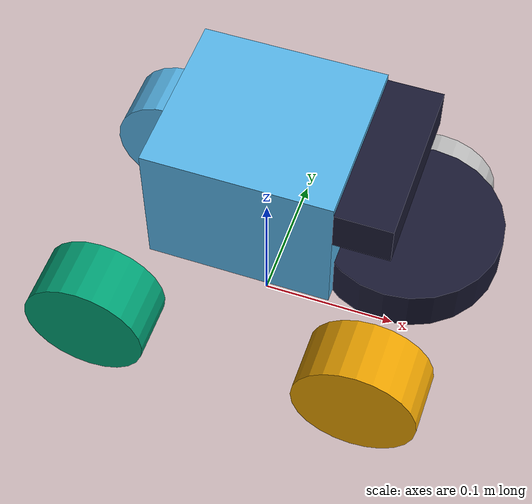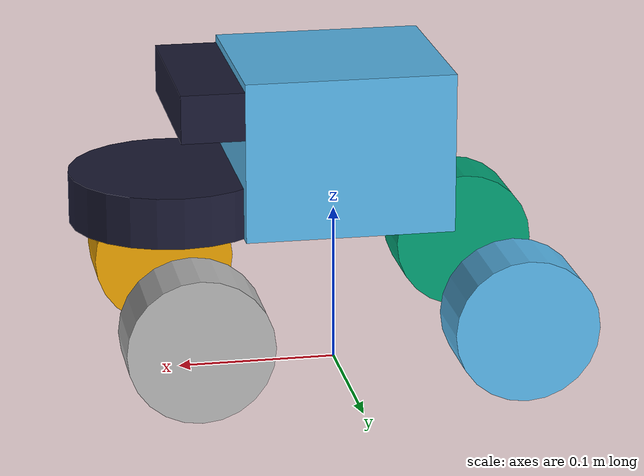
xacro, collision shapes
<?xml version="1.0"?>
<robot name="limo_four_diff" xmlns:xacro="http://ros.org/wiki/xacro">

    <xacro:arg name="robot_namespace" default="/" />

    <!-- 导入解耦后的传感器与执行机构模块 -->
    <xacro:include filename="$(find limo_gazebo_sim)/urdf/sensors.xacro" />
    <xacro:include filename="$(find limo_gazebo_sim)/urdf/actuators.xacro" />

    <!-- ================= 几何与物理参数定义 ================= -->
    <xacro:property name="M_PI" value="3.14159"/>

    <xacro:property name="base_x_size" value="0.13" />
    <xacro:property name="base_y_size" value="0.12" />
    <xacro:property name="base_z_size" value="0.1" />

    <xacro:property name="wheelbase" value="0.2"/>
    <xacro:property name="track" value="0.13"/>
    <xacro:property name="wheel_vertical_offset" value="-0.10" />
    <xacro:property name="base_mass" value="2.1557"/>

    <xacro:property name="wheel_length" value="0.045" />
    <xacro:property name="wheel_radius" value="0.045" />
    <xacro:property name="wheel_scale" value="2 2 2" />

    <!-- ================= 底盘基准与车身 Link ================= -->
    <link name="base_footprint"/>

    <joint name="base_joint" type="fixed">
        <parent link="base_footprint"/>
        <child link="base_link"/>
        <origin xyz="0.0 0.0 0.15" rpy="0 0 0"/>
    </joint>

    <link name="base_link">
        <visual>
            <origin xyz="0 0 -0.15" rpy="0 0 1.57" />
            <geometry>
                <mesh filename="package://limo_gazebo_sim/CAD/limo-model/limo_base.dae" scale="1 1 1"/>
            </geometry>
        </visual>
        <collision>
            <origin xyz="0 0 0" rpy="0 0 0" />
            <geometry>
                <box size="${base_x_size} ${base_y_size} ${base_z_size}"/>
            </geometry>
        </collision>
    </link>

    <link name="inertial_link">
        <inertial>
            <origin xyz="0.0 0.0 0.0" />
            <mass value="${base_mass}" />
            <inertia ixx="0.24" ixy="0" ixz="0"
                     iyy="0.96" iyz="0"
                     izz="0.96" />
        </inertial>
    </link>

    <joint name="inertial_joint" type="fixed">
        <origin xyz="0 0 0" rpy="0 0 0" />
        <parent link="base_link" />
        <child link="inertial_link" />
    </joint>

    <!-- ================= 传感器装配 (包含 Gazebo 插件) ================= -->
    <xacro:limo_laser parent_prefix="base_link" frame_prefix="laser">
        <origin xyz="0.103 0 -0.034" rpy="0 0 0"/>
    </xacro:limo_laser>

    <xacro:limo_depth_camera parent_prefix="base_link" frame_prefix="depth_camera">
        <origin xyz="0.084 0 0.03" rpy="0 0 0"/>
    </xacro:limo_depth_camera>

    <xacro:limo_imu parent_prefix="base_link" frame_prefix="imu">
        <origin xyz="0.0 0 -0.1" rpy="0 0 0"/>
    </xacro:limo_imu>

    <!-- ================= 四轮差速驱动轮系装配 ================= -->
    <!-- 左前轮 -->
    <xacro:limo_wheel parent_prefix="base_link" wheel_prefix="front_left" reflect="1">
        <origin xyz="${wheelbase/2} ${track/2} ${wheel_vertical_offset}" rpy="0 0 0" />
    </xacro:limo_wheel>
    <xacro:limo_wheel_transmission wheel_prefix="front_left" />

    <!-- 右前轮 -->
    <xacro:limo_wheel parent_prefix="base_link" wheel_prefix="front_right" reflect="-1">
        <origin xyz="${wheelbase/2} ${-track/2} ${wheel_vertical_offset}" rpy="${M_PI} 0 0" />
    </xacro:limo_wheel>
    <xacro:limo_wheel_transmission wheel_prefix="front_right" />

    <!-- 左后轮 -->
    <xacro:limo_wheel parent_prefix="base_link" wheel_prefix="rear_left" reflect="1">
        <origin xyz="${-wheelbase/2} ${track/2} ${wheel_vertical_offset}" rpy="0 0 0" />
    </xacro:limo_wheel>
    <xacro:limo_wheel_transmission wheel_prefix="rear_left" />

    <!-- 右后轮 -->
    <xacro:limo_wheel parent_prefix="base_link" wheel_prefix="rear_right" reflect="-1">
        <origin xyz="${-wheelbase/2} ${-track/2} ${wheel_vertical_offset}" rpy="${M_PI} 0 0" />
    </xacro:limo_wheel>
    <xacro:limo_wheel_transmission wheel_prefix="rear_right" />

    <!-- ================= Gazebo 仿真环境动力学与控制插件 ================= -->
    <gazebo reference="front_left_wheel">
        <mu1>10</mu1>
        <mu2>10</mu2>
        <kp>10000000.0</kp>
        <kd>1.0</kd>
        <minDepth>0.01</minDepth>
        <fdir1>1 0 0</fdir1>
        <maxContacts value="64"/>
    </gazebo>
    <gazebo reference="front_right_wheel">
        <mu1>10</mu1>
        <mu2>10</mu2>
        <kp>10000000.0</kp>
        <kd>1.0</kd>
        <minDepth>0.01</minDepth>
        <fdir1>1 0 0</fdir1>
        <maxContacts value="64"/>
    </gazebo>
    <gazebo reference="rear_left_wheel">
        <mu1>10</mu1>
        <mu2>10</mu2>
        <kp>10000000.0</kp>
        <kd>1.0</kd>
        <minDepth>0.01</minDepth>
        <fdir1>1 0 0</fdir1>
        <maxContacts value="64"/>
    </gazebo>
    <gazebo reference="rear_right_wheel">
        <mu1>10</mu1>
        <mu2>10</mu2>
        <kp>10000000.0</kp>
        <kd>1.0</kd>
        <minDepth>0.01</minDepth>
        <fdir1>1 0 0</fdir1>
        <maxContacts value="64"/>
    </gazebo>

    <gazebo>
        <!-- ros_control 控制器插件 -->
        <plugin name="gazebo_ros_control" filename="libgazebo_ros_control.so">
            <robotNamespace>$(arg robot_namespace)</robotNamespace>
        </plugin>

        <!-- 四轮差速滑移驱动插件 -->
        <plugin name="four_diff_controller" filename="libgazebo_ros_skid_steer_drive.so">
            <updateRate>100.0</updateRate>
            <robotNamespace>$(arg robot_namespace)</robotNamespace>
            <leftFrontJoint>front_left_wheel</leftFrontJoint>
            <rightFrontJoint>front_right_wheel</rightFrontJoint>
            <leftRearJoint>rear_left_wheel</leftRearJoint>
            <rightRearJoint>rear_right_wheel</rightRearJoint>
            <wheelSeparation>0.172</wheelSeparation>
            <wheelDiameter>0.09</wheelDiameter>
            <robotBaseFrame>base_footprint</robotBaseFrame>
            <commandTopic>cmd_vel</commandTopic>
            <torque>50</torque>
            <broadcastTF>true</broadcastTF>
            <odometryTopic>odom</odometryTopic>
            <odometryFrame>odom</odometryFrame>
            <covariance_x>0.000100</covariance_x>
            <covariance_y>0.000100</covariance_y>
            <covariance_yaw>0.010000</covariance_yaw>
        </plugin>
    </gazebo>

</robot>

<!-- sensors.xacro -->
<robot xmlns:xacro="http://ros.org/wiki/xacro">

    <!-- 激光雷达组件 (LiDAR): 包含物理外观、碰撞体、固定关节以及 Gazebo 射线传感器插件 -->
    <xacro:macro name="limo_laser" params="parent_prefix frame_prefix *joint_pose">
        <link name="${frame_prefix}_link">
            <pose>0 0 0 0 0 0</pose>
            <inertial>
                <mass value="0.1"/>
                <origin xyz="0.0 0 0" rpy="0 0 0"/>
                <inertia ixx="1e-6" ixy="0" ixz="0"
                         iyy="1e-6" iyz="0"
                         izz="1e-6"/>
            </inertial>
            <visual name="laser_visual">
                <origin xyz="0 0 0" rpy="0 0 0"/>
                <geometry>
                    <cylinder radius="0.04" length="0.02"/>
                </geometry>
                <material name="laser_material">
                    <color rgba="0.1 0.1 0.2 1.0"/>
                </material>
            </visual>
            <collision name="laser_collision">
                <origin xyz="0 0 0" rpy="0 0 0"/>
                <geometry>
                    <cylinder radius="0.064" length="0.032"/>
                </geometry>
            </collision>
        </link>

        <joint name="laser_joint" type="fixed">
            <xacro:insert_block name="joint_pose"/>
            <parent link="${parent_prefix}"/>
            <child link="${frame_prefix}_link"/>
        </joint>

        <gazebo reference="${frame_prefix}_link">
            <material>Gazebo/Yellow</material>
            <sensor type="ray" name="laser_sensor">
                <pose>0 0 0 0 0 0</pose>
                <visualize>false</visualize>
                <update_rate>8</update_rate>
                <ray>
                    <scan>
                        <horizontal>
                            <samples>720</samples>
                            <resolution>1</resolution>
                            <min_angle>-2.09439504</min_angle>
                            <max_angle>2.09439504</max_angle>
                        </horizontal>
                    </scan>
                    <range>
                        <min>0.08</min>
                        <max>8.0</max>
                        <resolution>0.01</resolution>
                    </range>
                    <noise>
                        <type>gaussian</type>
                        <mean>0.0</mean>
                        <stddev>0.01</stddev>
                    </noise>
                </ray>
                <plugin name="gazebo_ros_laser_sensor" filename="libgazebo_ros_laser.so">
                    <topicName>/scan</topicName>
                    <frameName>laser_link</frameName>
                </plugin>
            </sensor>
        </gazebo>
    </xacro:macro>

    <!-- 深度相机组件 (Depth Camera): 包含物理外观、相机光学坐标系以及 OpenNI Kinect 插件 -->
    <xacro:macro name="limo_depth_camera" params="parent_prefix frame_prefix *joint_pose">
        <link name="${frame_prefix}_link">
            <pose>0 0 0 0 0 0</pose>
            <inertial>
                <mass value="0.1"/>
                <origin xyz="0.0 0 0" rpy="0 0 0"/>
                <inertia ixx="1e-6" ixy="0" ixz="0"
                         iyy="1e-6" iyz="0"
                         izz="1e-6"/>
            </inertial>
            <visual name="depth_camera_visual">
                <origin xyz="0 0 0" rpy="0 0 0"/>
                <geometry>
                    <box size="0.04 0.12 0.03"/>
                </geometry>
                <material name="depth_camera_material">
                    <color rgba="0.1 0.1 0.2 1.0"/>
                </material>
            </visual>
            <collision name="depth_camera_collision">
                <origin xyz="0 0 0" rpy="0 0 0"/>
                <geometry>
                    <box size="0.04 0.12 0.03"/>
                </geometry>
            </collision>
        </link>

        <joint name="depth_camera_joint" type="fixed">
            <xacro:insert_block name="joint_pose"/>
            <parent link="${parent_prefix}"/>
            <child link="${frame_prefix}_link"/>
        </joint>

        <!-- 相机光学参考系 (Optical frame) -->
        <link name="depth_link"/>
        <joint name="${frame_prefix}_to_camera_joint" type="fixed">
            <origin xyz="0 0 0" rpy="${-M_PI/2} 0 ${-M_PI/2}"/>
            <parent link="${frame_prefix}_link"/>
            <child link="depth_link"/>
        </joint>

        <gazebo reference="${frame_prefix}_link">
            <material>Gazebo/Yellow</material>
            <sensor name="sensor_camera" type="depth">
                <pose>0.0 0.0 0.0 0.0 0.0 0.0</pose>
                <always_on>true</always_on>
                <visualize>true</visualize>
                <update_rate>10.0</update_rate>
                <camera name="head">
                    <horizontal_fov>1.3962634</horizontal_fov>
                    <image>
                        <width>640</width>
                        <height>480</height>
                        <format>R8G8B8</format>
                    </image>
                    <clip>
                        <near>0.02</near>
                        <far>300</far>
                    </clip>
                </camera>
                <plugin name="gazebo_ros_depth_camera_sensor" filename="libgazebo_ros_openni_kinect.so">
                    <baseline>0.2</baseline>
                    <alwaysOn>true</alwaysOn>
                    <updateRate>0.0</updateRate>
                    <cameraName>camera_ir</cameraName>
                    <imageTopicName>/color/image_raw</imageTopicName>
                    <cameraInfoTopicName>/color/camera_info</cameraInfoTopicName>
                    <depthImageTopicName>/depth/image_raw</depthImageTopicName>
                    <depthImageCameraInfoTopicName>/depth/camera_info</depthImageCameraInfoTopicName>
                    <pointCloudTopicName>/depth/3Dpoints</pointCloudTopicName>
                    <frameName>depth_link</frameName>
                    <cameraname>depth_camera_link</cameraname>
                    <pointCloudCutoff>0.5</pointCloudCutoff>
                    <pointCloudCutoffMax>3.0</pointCloudCutoffMax>
                    <distortionK1>0</distortionK1>
                    <distortionK2>0</distortionK2>
                    <distortionK3>0</distortionK3>
                    <distortionT1>0</distortionT1>
                    <distortionT2>0</distortionT2>
                    <CxPrime>0</CxPrime>
                    <Cx>0</Cx>
                    <Cy>0</Cy>
                    <focalLength>0</focalLength>
                    <hackBaseline>0</hackBaseline>
                </plugin>
            </sensor>
        </gazebo>
    </xacro:macro>

    <!-- 惯性测量单元 (IMU): 包含物理外观与 Gazebo IMU 传感器插件 -->
    <xacro:macro name="limo_imu" params="parent_prefix frame_prefix *joint_pose">
        <link name="${frame_prefix}_link">
            <pose>0 0 0 0 0 0</pose>
            <inertial>
                <mass value="0.01"/>
                <origin xyz="0.0 0 0" rpy="0 0 0"/>
                <inertia ixx="1e-7" ixy="0" ixz="0"
                         iyy="1e-7" iyz="0"
                         izz="1e-7"/>
            </inertial>
            <visual name="imu_visual">
                <origin xyz="0 0 0" rpy="0 0 0"/>
                <geometry>
                    <box size="0.002 0.002 0.002"/>
                </geometry>
                <material name="imu_material">
                    <color rgba="0.1 0.1 0.2 1.0"/>
                </material>
            </visual>
            <collision name="imu_collision">
                <origin xyz="0 0 0" rpy="0 0 0"/>
                <geometry>
                    <box size="0.002 0.002 0.002"/>
                </geometry>
            </collision>
        </link>

        <joint name="imu_joint" type="fixed">
            <xacro:insert_block name="joint_pose"/>
            <parent link="${parent_prefix}"/>
            <child link="${frame_prefix}_link"/>
        </joint>

        <gazebo reference="${frame_prefix}_link">
            <material>Gazebo/Yellow</material>
            <gravity>true</gravity>
            <sensor name="imu_sensor" type="imu">
                <always_on>true</always_on>
                <update_rate>100</update_rate>
                <visualize>true</visualize>
                <topic>__default_topic__</topic>
                <plugin filename="libgazebo_ros_imu_sensor.so" name="imu_plugin">
                    <topicName>/imu</topicName>
                    <bodyName>${frame_prefix}_link</bodyName>
                    <updateRateHZ>100.0</updateRateHZ>
                    <gaussianNoise>0.001</gaussianNoise>
                    <xyzOffset>0 0 0</xyzOffset>
                    <rpyOffset>0 0 0</rpyOffset>
                    <frameName>imu_link</frameName>
                </plugin>
                <pose>0 0 0 0 0 0</pose>
            </sensor>
        </gazebo>
    </xacro:macro>

</robot>

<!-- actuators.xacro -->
<robot xmlns:xacro="http://ros.org/wiki/xacro">

    <!-- 通用驱动轮组件 (Wheel): 包含物理网格、碰撞圆柱体、转动惯量与连续旋转关节 -->
    <xacro:macro name="limo_wheel" params="parent_prefix wheel_prefix reflect *joint_pose">
        <link name="${wheel_prefix}_wheel_link">
            <inertial>
                <origin xyz="0 0 0" />
                <mass value="0.5" />
                <inertia ixx="0.01055" ixy="0" ixz="0"
                         iyy="0.00075" iyz="0"
                         izz="0.01055" />
            </inertial>
            <visual>
                <origin xyz="0 0 0" rpy="0 0 0" />
                <geometry>
                    <mesh filename="package://limo_gazebo_sim/CAD/limo-model/limo_wheel.dae" scale="${wheel_scale}" />
                </geometry>
            </visual>
            <collision>
                <origin xyz="0 ${wheel_length/2} 0" rpy="1.57 0 0" />
                <geometry>
                    <cylinder length="${wheel_length}" radius="${wheel_radius}" />
                </geometry>
            </collision>
        </link>

        <joint name="${wheel_prefix}_wheel" type="continuous">
            <parent link="${parent_prefix}"/>
            <child link="${wheel_prefix}_wheel_link"/>
            <xacro:insert_block name="joint_pose"/>
            <axis xyz="0 ${reflect*1} 0"/>
        </joint>
    </xacro:macro>

    <!-- 通用速度控制传动配置 (Transmission) - 用于四轮差速或直接驱动模式 -->
    <xacro:macro name="limo_wheel_transmission" params="wheel_prefix">
        <transmission name="${wheel_prefix}_wheel_trans" type="SimpleTransmission">
            <type>transmission_interface/SimpleTransmission</type>
            <actuator name="${wheel_prefix}_wheel_motor">
                <hardwareInterface>hardware_interface/VelocityJointInterface</hardwareInterface>
                <mechanicalReduction>1</mechanicalReduction>
            </actuator>
            <joint name="${wheel_prefix}_wheel">
                <hardwareInterface>hardware_interface/VelocityJointInterface</hardwareInterface>
            </joint>
        </transmission>
    </xacro:macro>

    <!-- 阿克曼前轮转向铰链节 (Steering Hinge): 包含转向偏转旋转关节、力矩传动配置及前轮装配 -->
    <xacro:macro name="limo_steering_hinge" params="parent_prefix hinge_prefix wheel_prefix reflect *joint_pose">
        <!-- 转向销构件 (Knuckle link) -->
        <link name="${hinge_prefix}">
            <inertial>
                <mass value="0.25" />
                <inertia ixx="0.00525" ixy="0" ixz="0"
                         iyy="0.00035" iyz="0"
                         izz="0.00525" />
                <origin xyz="0 0 0" />
            </inertial>
            <visual>
                <origin xyz="0 0 0" rpy="0 0 0" />
                <geometry>
                    <cylinder length="0.0002" radius="0.0002" />
                </geometry>
            </visual>
            <collision>
                <origin xyz="0 0 0" rpy="1.57 0 0" />
                <geometry>
                    <cylinder length="0.01" radius="0.01" />
                </geometry>
            </collision>
        </link>

        <!-- 转向偏转旋转关节 (Revolute joint) -->
        <joint name="${hinge_prefix}_wheel" type="revolute">
            <parent link="${parent_prefix}"/>
            <child link="${hinge_prefix}"/>
            <xacro:insert_block name="joint_pose"/>
            <axis xyz="0 0 ${reflect*1}" />
            <limit lower="-0.523598767" upper="0.523598767" effort="5" velocity="0.5" />
            <dynamics damping="1.0" friction="2.0"/>
        </joint>

        <!-- 转向关节力矩控制传动接口 (由 ros_control 角度控制器驱动) -->
        <transmission name="${hinge_prefix}_wheel_trans" type="SimpleTransmission">
            <type>transmission_interface/SimpleTransmission</type>
            <actuator name="${hinge_prefix}_wheel_motor">
                <hardwareInterface>hardware_interface/EffortJointInterface</hardwareInterface>
                <mechanicalReduction>1</mechanicalReduction>
            </actuator>
            <joint name="${hinge_prefix}_wheel">
                <hardwareInterface>hardware_interface/EffortJointInterface</hardwareInterface>
            </joint>
        </transmission>

        <!-- 挂载于此转向节之前轮 (复用通用轮系宏) -->
        <xacro:limo_wheel parent_prefix="${hinge_prefix}" wheel_prefix="${wheel_prefix}" reflect="${reflect}">
            <origin xyz="0 0 0" rpy="0 0 0" />
        </xacro:limo_wheel>
    </xacro:macro>

</robot>
